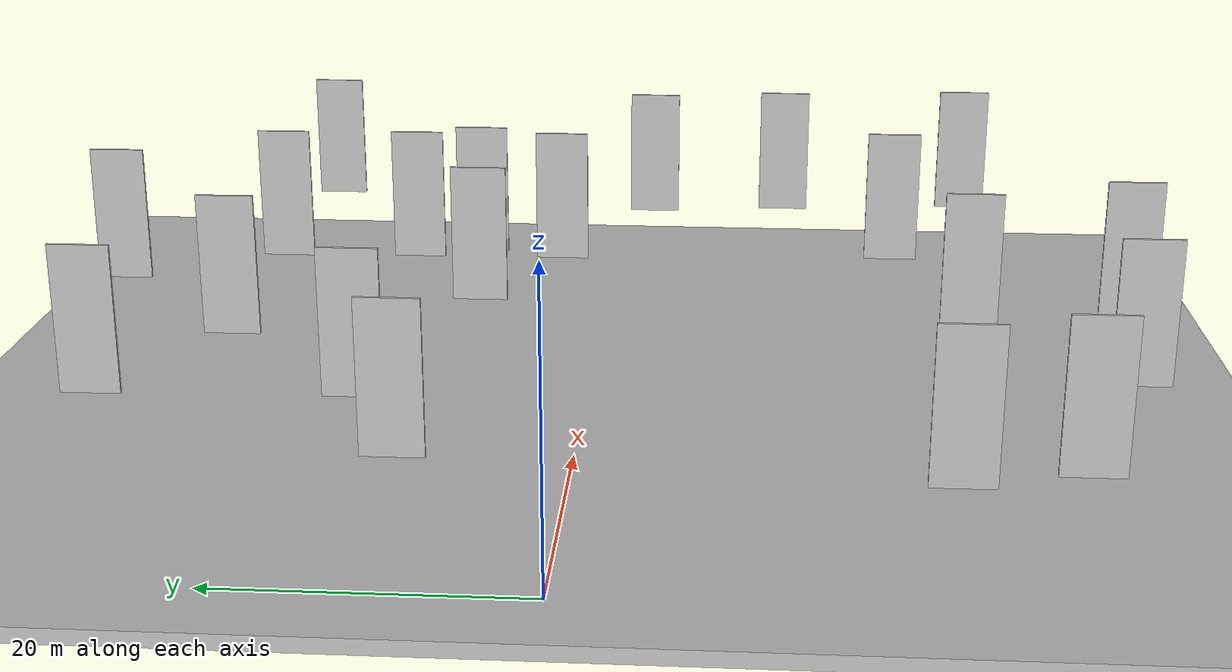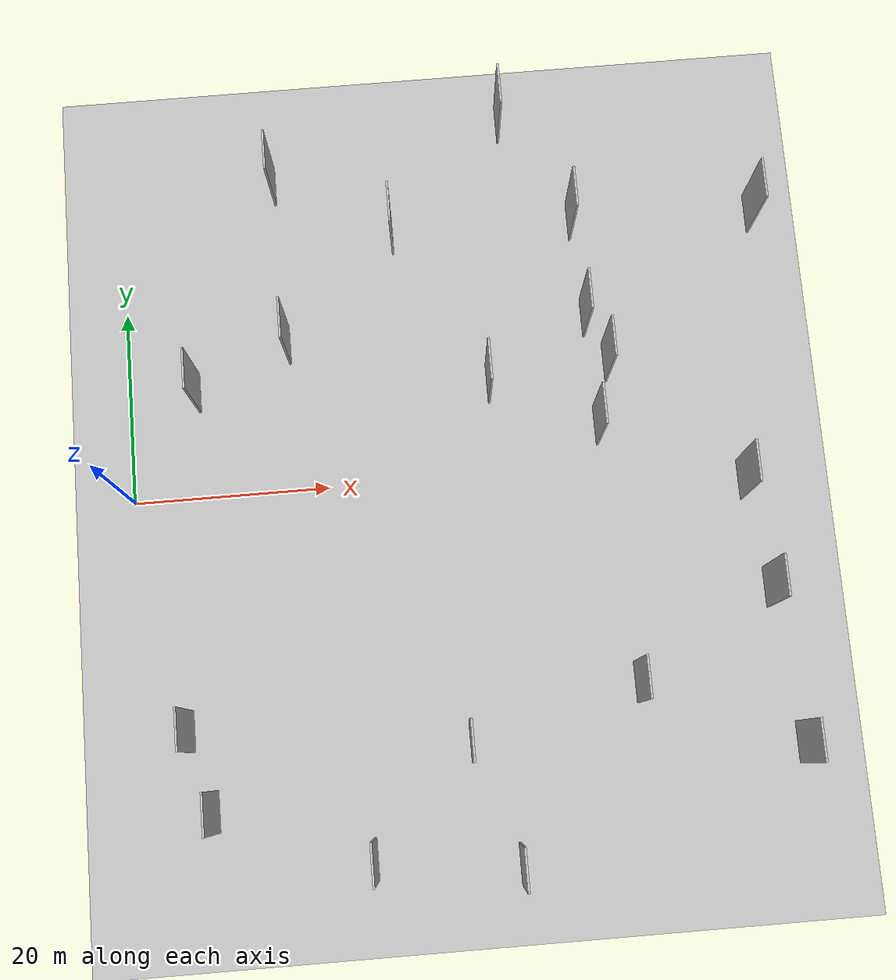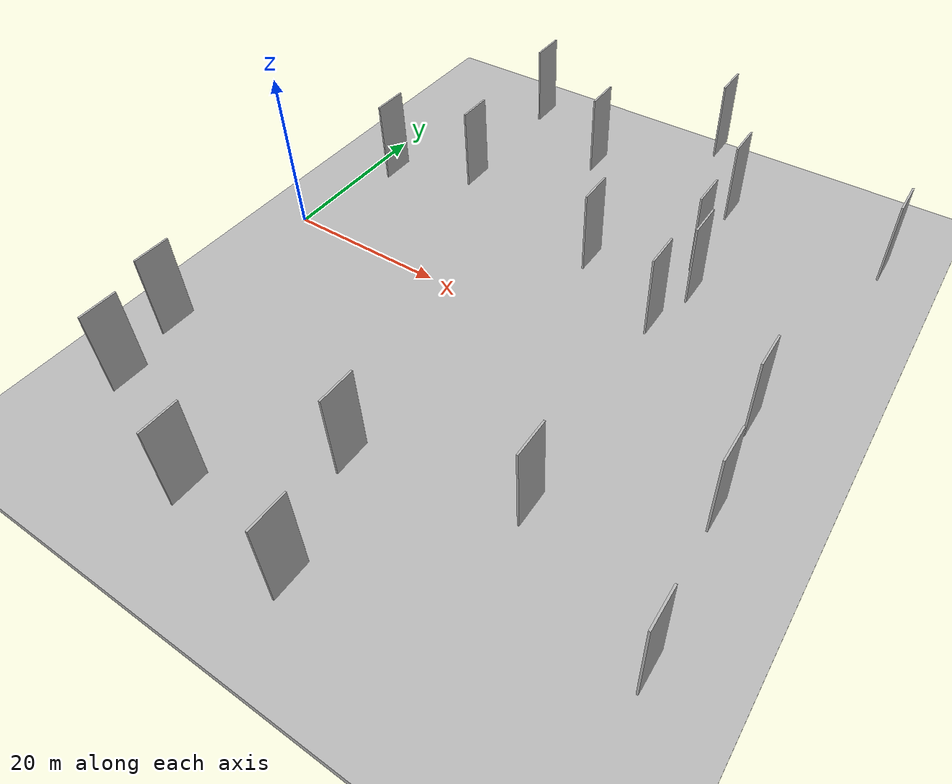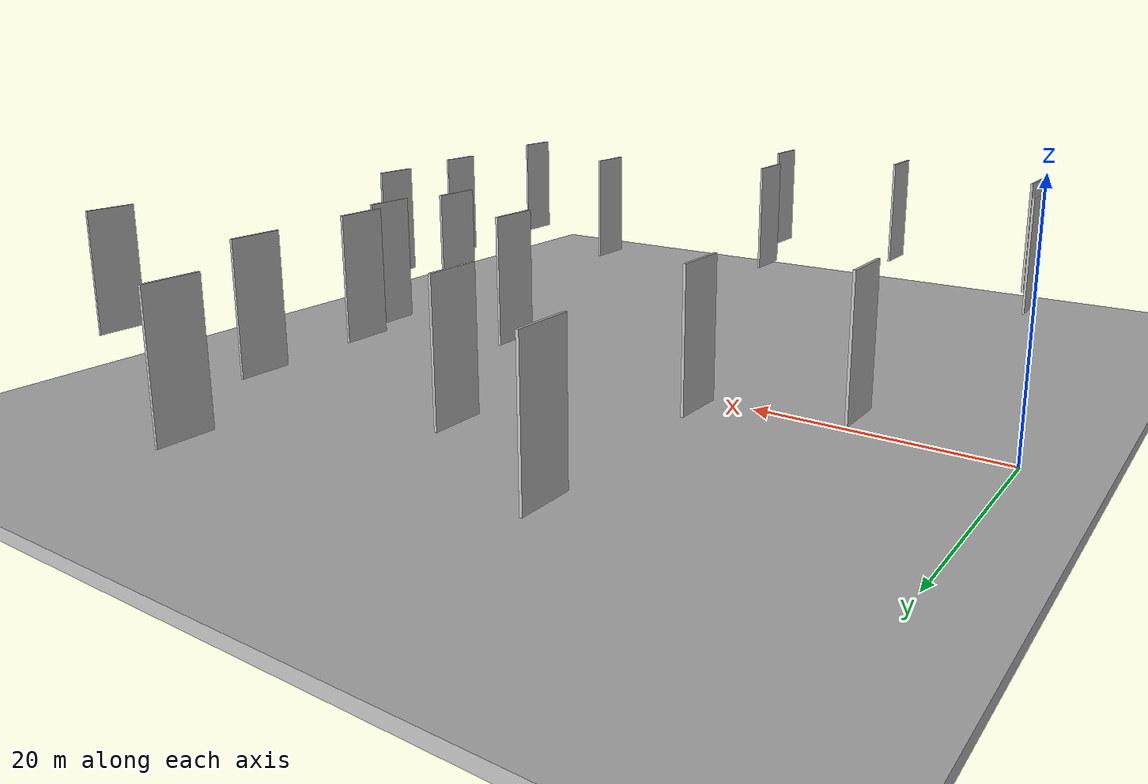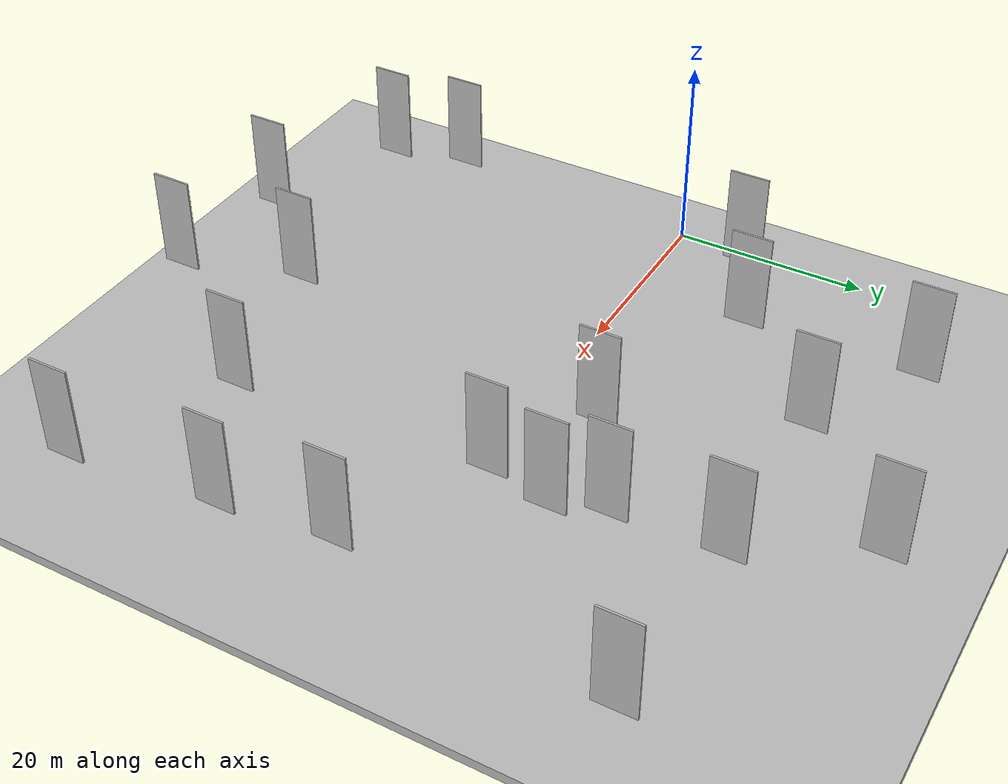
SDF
<?xml version="1.0" encoding="utf-8"?>

<sdf version="1.6">

   <world name="default">

      <gui fullscreen="0">

         <camera name="user_camera">

            <pose>-15 0 4.57585 0 0 0</pose>

            <view_controller>orbit</view_controller>

         </camera>

      </gui>

      <scene>

         <sky>

           <clouds>

             <speed>12</speed>

           </clouds>

         </sky>

         <ambient>0.4 0.4 0.4 1</ambient>

         <background>0.7 0.7 0.7 1</background>

         <shadows>1</shadows>

      </scene>

      <gravity>0 0 -9.8066</gravity>

      <magnetic_field>6e-06 2.3e-05 -4.2e-05</magnetic_field>

      <physics default="0" name="default_physics" type="ode">

         <ode>

            <solver>

               <type>quick</type>

               <iters>10</iters>

               <sor>1.0</sor>

               <use_dynamic_moi_rescaling>0</use_dynamic_moi_rescaling>

            </solver>

            <constraints>

               <cfm>0</cfm>

               <erp>0.2</erp>

               <contact_max_correcting_vel>100</contact_max_correcting_vel>

               <contact_surface_layer>0.001</contact_surface_layer>

            </constraints>

         </ode>

         <max_step_size>0.004</max_step_size>

         <real_time_factor>1</real_time_factor>

         <real_time_update_rate>250</real_time_update_rate>

      </physics>

      <light name="sun" type="directional">

         <cast_shadows>1</cast_shadows>

         <pose>0 0 10 0 0 0</pose>

         <diffuse>0.8 0.8 0.8 1</diffuse>

         <specular>0.2 0.2 0.2 1</specular>

         <attenuation>

            <range>1000</range>

            <constant>0.9</constant>

            <linear>0.01</linear>

            <quadratic>0.001</quadratic>

         </attenuation>

         <direction>-0.5 0.1 -0.9</direction>

      </light>

      <include>

         <name>ground_plane_1</name>

         <uri>model://HANNAS_ground_plane</uri>

         <pose>0 0 0  0 0 0</pose>

      </include>

      <include>

         <name>ground_plane_2</name>

         <uri>model://HANNAS_ground_plane</uri>

         <pose>100 0 0  0 0 0</pose>

      </include>

      <model name="HANNAS_wall_1">

         <static>1</static>

         <pose frame="">40.0768 35.9494 5.0 0.000000 0.000000 1.570796</pose>

         <link name="link">

            <pose frame="">0 0 5.00 0 0 0</pose>

            <collision name="collision">

               <geometry>

                  <box>

                     <size>4.00 0.2 10.00</size>

                  </box>

               </geometry>

               <max_contacts>10</max_contacts>

               <surface>

                  <contact>

                     <ode/>

                  </contact>

                  <bounce/>

                  <friction>

                     <torsional>

                        <ode/>

                     </torsional>

                     <ode/>

                  </friction>

               </surface>

            </collision>

            <visual name="visual">

               <cast_shadows>0</cast_shadows>

               <geometry>

                  <box>

                     <size>4.00 0.2 10.00</size>

                  </box>

               </geometry>

               <material>

                  <script>

                     <uri>model://HANNAS_wall/materials/scripts</uri>

                     <uri>model://HANNAS_wall/materials/textures</uri>

                     <name>vrc/HANNAS_wall</name>

                  </script>

               </material>

            </visual>

            <self_collide>0</self_collide>

            <enable_wind>0</enable_wind>

            <kinematic>0</kinematic>

         </link>

      </model>

      <model name="HANNAS_wall_2">

         <static>1</static>

         <pose frame="">48.5085 -22.4260 5.0 0.000000 0.000000 1.570796</pose>

         <link name="link">

            <pose frame="">0 0 5.00 0 0 0</pose>

            <collision name="collision">

               <geometry>

                  <box>

                     <size>4.00 0.2 10.00</size>

                  </box>

               </geometry>

               <max_contacts>10</max_contacts>

               <surface>

                  <contact>

                     <ode/>

                  </contact>

                  <bounce/>

                  <friction>

                     <torsional>

                        <ode/>

                     </torsional>

                     <ode/>

                  </friction>

               </surface>

            </collision>

            <visual name="visual">

               <cast_shadows>0</cast_shadows>

               <geometry>

                  <box>

                     <size>4.00 0.2 10.00</size>

                  </box>

               </geometry>

               <material>

                  <script>

                     <uri>model://HANNAS_wall/materials/scripts</uri>

                     <uri>model://HANNAS_wall/materials/textures</uri>

                     <name>vrc/HANNAS_wall</name>

                  </script>

               </material>

            </visual>

            <self_collide>0</self_collide>

            <enable_wind>0</enable_wind>

            <kinematic>0</kinematic>

         </link>

      </model>

      <model name="HANNAS_wall_3">

         <static>1</static>

         <pose frame="">46.8957 14.4274 5.0 0.000000 0.000000 1.570796</pose>

         <link name="link">

            <pose frame="">0 0 5.00 0 0 0</pose>

            <collision name="collision">

               <geometry>

                  <box>

                     <size>4.00 0.2 10.00</size>

                  </box>

               </geometry>

               <max_contacts>10</max_contacts>

               <surface>

                  <contact>

                     <ode/>

                  </contact>

                  <bounce/>

                  <friction>

                     <torsional>

                        <ode/>

                     </torsional>

                     <ode/>

                  </friction>

               </surface>

            </collision>

            <visual name="visual">

               <cast_shadows>0</cast_shadows>

               <geometry>

                  <box>

                     <size>4.00 0.2 10.00</size>

                  </box>

               </geometry>

               <material>

                  <script>

                     <uri>model://HANNAS_wall/materials/scripts</uri>

                     <uri>model://HANNAS_wall/materials/textures</uri>

                     <name>vrc/HANNAS_wall</name>

                  </script>

               </material>

            </visual>

            <self_collide>0</self_collide>

            <enable_wind>0</enable_wind>

            <kinematic>0</kinematic>

         </link>

      </model>

      <model name="HANNAS_wall_4">

         <static>1</static>

         <pose frame="">7.6327 -31.3090 5.0 0.000000 0.000000 1.570796</pose>

         <link name="link">

            <pose frame="">0 0 5.00 0 0 0</pose>

            <collision name="collision">

               <geometry>

                  <box>

                     <size>4.00 0.2 10.00</size>

                  </box>

               </geometry>

               <max_contacts>10</max_contacts>

               <surface>

                  <contact>

                     <ode/>

                  </contact>

                  <bounce/>

                  <friction>

                     <torsional>

                        <ode/>

                     </torsional>

                     <ode/>

                  </friction>

               </surface>

            </collision>

            <visual name="visual">

               <cast_shadows>0</cast_shadows>

               <geometry>

                  <box>

                     <size>4.00 0.2 10.00</size>

                  </box>

               </geometry>

               <material>

                  <script>

                     <uri>model://HANNAS_wall/materials/scripts</uri>

                     <uri>model://HANNAS_wall/materials/textures</uri>

                     <name>vrc/HANNAS_wall</name>

                  </script>

               </material>

            </visual>

            <self_collide>0</self_collide>

            <enable_wind>0</enable_wind>

            <kinematic>0</kinematic>

         </link>

      </model>

      <model name="HANNAS_wall_5">

         <static>1</static>

         <pose frame="">36.7635 8.3329 5.0 0.000000 0.000000 1.570796</pose>

         <link name="link">

            <pose frame="">0 0 5.00 0 0 0</pose>

            <collision name="collision">

               <geometry>

                  <box>

                     <size>4.00 0.2 10.00</size>

                  </box>

               </geometry>

               <max_contacts>10</max_contacts>

               <surface>

                  <contact>

                     <ode/>

                  </contact>

                  <bounce/>

                  <friction>

                     <torsional>

                        <ode/>

                     </torsional>

                     <ode/>

                  </friction>

               </surface>

            </collision>

            <visual name="visual">

               <cast_shadows>0</cast_shadows>

               <geometry>

                  <box>

                     <size>4.00 0.2 10.00</size>

                  </box>

               </geometry>

               <material>

                  <script>

                     <uri>model://HANNAS_wall/materials/scripts</uri>

                     <uri>model://HANNAS_wall/materials/textures</uri>

                     <name>vrc/HANNAS_wall</name>

                  </script>

               </material>

            </visual>

            <self_collide>0</self_collide>

            <enable_wind>0</enable_wind>

            <kinematic>0</kinematic>

         </link>

      </model>

      <model name="HANNAS_wall_6">

         <static>1</static>

         <pose frame="">7.8619 9.7866 5.0 0.000000 0.000000 1.570796</pose>

         <link name="link">

            <pose frame="">0 0 5.00 0 0 0</pose>

            <collision name="collision">

               <geometry>

                  <box>

                     <size>4.00 0.2 10.00</size>

                  </box>

               </geometry>

               <max_contacts>10</max_contacts>

               <surface>

                  <contact>

                     <ode/>

                  </contact>

                  <bounce/>

                  <friction>

                     <torsional>

                        <ode/>

                     </torsional>

                     <ode/>

                  </friction>

               </surface>

            </collision>

            <visual name="visual">

               <cast_shadows>0</cast_shadows>

               <geometry>

                  <box>

                     <size>4.00 0.2 10.00</size>

                  </box>

               </geometry>

               <material>

                  <script>

                     <uri>model://HANNAS_wall/materials/scripts</uri>

                     <uri>model://HANNAS_wall/materials/textures</uri>

                     <name>vrc/HANNAS_wall</name>

                  </script>

               </material>

            </visual>

            <self_collide>0</self_collide>

            <enable_wind>0</enable_wind>

            <kinematic>0</kinematic>

         </link>

      </model>

      <model name="HANNAS_wall_7">

         <static>1</static>

         <pose frame="">22.3459 -36.8904 5.0 0.000000 0.000000 1.570796</pose>

         <link name="link">

            <pose frame="">0 0 5.00 0 0 0</pose>

            <collision name="collision">

               <geometry>

                  <box>

                     <size>4.00 0.2 10.00</size>

                  </box>

               </geometry>

               <max_contacts>10</max_contacts>

               <surface>

                  <contact>

                     <ode/>

                  </contact>

                  <bounce/>

                  <friction>

                     <torsional>

                        <ode/>

                     </torsional>

                     <ode/>

                  </friction>

               </surface>

            </collision>

            <visual name="visual">

               <cast_shadows>0</cast_shadows>

               <geometry>

                  <box>

                     <size>4.00 0.2 10.00</size>

                  </box>

               </geometry>

               <material>

                  <script>

                     <uri>model://HANNAS_wall/materials/scripts</uri>

                     <uri>model://HANNAS_wall/materials/textures</uri>

                     <name>vrc/HANNAS_wall</name>

                  </script>

               </material>

            </visual>

            <self_collide>0</self_collide>

            <enable_wind>0</enable_wind>

            <kinematic>0</kinematic>

         </link>

      </model>

      <model name="HANNAS_wall_8">

         <static>1</static>

         <pose frame="">32.1319 -26.7567 5.0 0.000000 0.000000 1.570796</pose>

         <link name="link">

            <pose frame="">0 0 5.00 0 0 0</pose>

            <collision name="collision">

               <geometry>

                  <box>

                     <size>4.00 0.2 10.00</size>

                  </box>

               </geometry>

               <max_contacts>10</max_contacts>

               <surface>

                  <contact>

                     <ode/>

                  </contact>

                  <bounce/>

                  <friction>

                     <torsional>

                        <ode/>

                     </torsional>

                     <ode/>

                  </friction>

               </surface>

            </collision>

            <visual name="visual">

               <cast_shadows>0</cast_shadows>

               <geometry>

                  <box>

                     <size>4.00 0.2 10.00</size>

                  </box>

               </geometry>

               <material>

                  <script>

                     <uri>model://HANNAS_wall/materials/scripts</uri>

                     <uri>model://HANNAS_wall/materials/textures</uri>

                     <name>vrc/HANNAS_wall</name>

                  </script>

               </material>

            </visual>

            <self_collide>0</self_collide>

            <enable_wind>0</enable_wind>

            <kinematic>0</kinematic>

         </link>

      </model>

      <model name="HANNAS_wall_9">

         <static>1</static>

         <pose frame="">17.1582 13.9943 5.0 0.000000 0.000000 1.570796</pose>

         <link name="link">

            <pose frame="">0 0 5.00 0 0 0</pose>

            <collision name="collision">

               <geometry>

                  <box>

                     <size>4.00 0.2 10.00</size>

                  </box>

               </geometry>

               <max_contacts>10</max_contacts>

               <surface>

                  <contact>

                     <ode/>

                  </contact>

                  <bounce/>

                  <friction>

                     <torsional>

                        <ode/>

                     </torsional>

                     <ode/>

                  </friction>

               </surface>

            </collision>

            <visual name="visual">

               <cast_shadows>0</cast_shadows>

               <geometry>

                  <box>

                     <size>4.00 0.2 10.00</size>

                  </box>

               </geometry>

               <material>

                  <script>

                     <uri>model://HANNAS_wall/materials/scripts</uri>

                     <uri>model://HANNAS_wall/materials/textures</uri>

                     <name>vrc/HANNAS_wall</name>

                  </script>

               </material>

            </visual>

            <self_collide>0</self_collide>

            <enable_wind>0</enable_wind>

            <kinematic>0</kinematic>

         </link>

      </model>

      <model name="HANNAS_wall_10">

         <static>1</static>

         <pose frame="">47.1271 3.1942 5.0 0.000000 0.000000 1.570796</pose>

         <link name="link">

            <pose frame="">0 0 5.00 0 0 0</pose>

            <collision name="collision">

               <geometry>

                  <box>

                     <size>4.00 0.2 10.00</size>

                  </box>

               </geometry>

               <max_contacts>10</max_contacts>

               <surface>

                  <contact>

                     <ode/>

                  </contact>

                  <bounce/>

                  <friction>

                     <torsional>

                        <ode/>

                     </torsional>

                     <ode/>

                  </friction>

               </surface>

            </collision>

            <visual name="visual">

               <cast_shadows>0</cast_shadows>

               <geometry>

                  <box>

                     <size>4.00 0.2 10.00</size>

                  </box>

               </geometry>

               <material>

                  <script>

                     <uri>model://HANNAS_wall/materials/scripts</uri>

                     <uri>model://HANNAS_wall/materials/textures</uri>

                     <name>vrc/HANNAS_wall</name>

                  </script>

               </material>

            </visual>

            <self_collide>0</self_collide>

            <enable_wind>0</enable_wind>

            <kinematic>0</kinematic>

         </link>

      </model>

      <model name="HANNAS_wall_11">

         <static>1</static>

         <pose frame="">35.9084 -38.4256 5.0 0.000000 0.000000 1.570796</pose>

         <link name="link">

            <pose frame="">0 0 5.00 0 0 0</pose>

            <collision name="collision">

               <geometry>

                  <box>

                     <size>4.00 0.2 10.00</size>

                  </box>

               </geometry>

               <max_contacts>10</max_contacts>

               <surface>

                  <contact>

                     <ode/>

                  </contact>

                  <bounce/>

                  <friction>

                     <torsional>

                        <ode/>

                     </torsional>

                     <ode/>

                  </friction>

               </surface>

            </collision>

            <visual name="visual">

               <cast_shadows>0</cast_shadows>

               <geometry>

                  <box>

                     <size>4.00 0.2 10.00</size>

                  </box>

               </geometry>

               <material>

                  <script>

                     <uri>model://HANNAS_wall/materials/scripts</uri>

                     <uri>model://HANNAS_wall/materials/textures</uri>

                     <name>vrc/HANNAS_wall</name>

                  </script>

               </material>

            </visual>

            <self_collide>0</self_collide>

            <enable_wind>0</enable_wind>

            <kinematic>0</kinematic>

         </link>

      </model>

      <model name="HANNAS_wall_12">

         <static>1</static>

         <pose frame="">62.0846 -14.2858 5.0 0.000000 0.000000 1.570796</pose>

         <link name="link">

            <pose frame="">0 0 5.00 0 0 0</pose>

            <collision name="collision">

               <geometry>

                  <box>

                     <size>4.00 0.2 10.00</size>

                  </box>

               </geometry>

               <max_contacts>10</max_contacts>

               <surface>

                  <contact>

                     <ode/>

                  </contact>

                  <bounce/>

                  <friction>

                     <torsional>

                        <ode/>

                     </torsional>

                     <ode/>

                  </friction>

               </surface>

            </collision>

            <visual name="visual">

               <cast_shadows>0</cast_shadows>

               <geometry>

                  <box>

                     <size>4.00 0.2 10.00</size>

                  </box>

               </geometry>

               <material>

                  <script>

                     <uri>model://HANNAS_wall/materials/scripts</uri>

                     <uri>model://HANNAS_wall/materials/textures</uri>

                     <name>vrc/HANNAS_wall</name>

                  </script>

               </material>

            </visual>

            <self_collide>0</self_collide>

            <enable_wind>0</enable_wind>

            <kinematic>0</kinematic>

         </link>

      </model>

      <model name="HANNAS_wall_13">

         <static>1</static>

         <pose frame="">46.4742 24.7945 5.0 0.000000 0.000000 1.570796</pose>

         <link name="link">

            <pose frame="">0 0 5.00 0 0 0</pose>

            <collision name="collision">

               <geometry>

                  <box>

                     <size>4.00 0.2 10.00</size>

                  </box>

               </geometry>

               <max_contacts>10</max_contacts>

               <surface>

                  <contact>

                     <ode/>

                  </contact>

                  <bounce/>

                  <friction>

                     <torsional>

                        <ode/>

                     </torsional>

                     <ode/>

                  </friction>

               </surface>

            </collision>

            <visual name="visual">

               <cast_shadows>0</cast_shadows>

               <geometry>

                  <box>

                     <size>4.00 0.2 10.00</size>

                  </box>

               </geometry>

               <material>

                  <script>

                     <uri>model://HANNAS_wall/materials/scripts</uri>

                     <uri>model://HANNAS_wall/materials/textures</uri>

                     <name>vrc/HANNAS_wall</name>

                  </script>

               </material>

            </visual>

            <self_collide>0</self_collide>

            <enable_wind>0</enable_wind>

            <kinematic>0</kinematic>

         </link>

      </model>

      <model name="HANNAS_wall_14">

         <static>1</static>

         <pose frame="">64.7400 24.1375 5.0 0.000000 0.000000 1.570796</pose>

         <link name="link">

            <pose frame="">0 0 5.00 0 0 0</pose>

            <collision name="collision">

               <geometry>

                  <box>

                     <size>4.00 0.2 10.00</size>

                  </box>

               </geometry>

               <max_contacts>10</max_contacts>

               <surface>

                  <contact>

                     <ode/>

                  </contact>

                  <bounce/>

                  <friction>

                     <torsional>

                        <ode/>

                     </torsional>

                     <ode/>

                  </friction>

               </surface>

            </collision>

            <visual name="visual">

               <cast_shadows>0</cast_shadows>

               <geometry>

                  <box>

                     <size>4.00 0.2 10.00</size>

                  </box>

               </geometry>

               <material>

                  <script>

                     <uri>model://HANNAS_wall/materials/scripts</uri>

                     <uri>model://HANNAS_wall/materials/textures</uri>

                     <name>vrc/HANNAS_wall</name>

                  </script>

               </material>

            </visual>

            <self_collide>0</self_collide>

            <enable_wind>0</enable_wind>

            <kinematic>0</kinematic>

         </link>

      </model>

      <model name="HANNAS_wall_15">

         <static>1</static>

         <pose frame="">28.3373 24.7083 5.0 0.000000 0.000000 1.570796</pose>

         <link name="link">

            <pose frame="">0 0 5.00 0 0 0</pose>

            <collision name="collision">

               <geometry>

                  <box>

                     <size>4.00 0.2 10.00</size>

                  </box>

               </geometry>

               <max_contacts>10</max_contacts>

               <surface>

                  <contact>

                     <ode/>

                  </contact>

                  <bounce/>

                  <friction>

                     <torsional>

                        <ode/>

                     </torsional>

                     <ode/>

                  </friction>

               </surface>

            </collision>

            <visual name="visual">

               <cast_shadows>0</cast_shadows>

               <geometry>

                  <box>

                     <size>4.00 0.2 10.00</size>

                  </box>

               </geometry>

               <material>

                  <script>

                     <uri>model://HANNAS_wall/materials/scripts</uri>

                     <uri>model://HANNAS_wall/materials/textures</uri>

                     <name>vrc/HANNAS_wall</name>

                  </script>

               </material>

            </visual>

            <self_collide>0</self_collide>

            <enable_wind>0</enable_wind>

            <kinematic>0</kinematic>

         </link>

      </model>

      <model name="HANNAS_wall_16">

         <static>1</static>

         <pose frame="">5.6250 -23.6150 5.0 0.000000 0.000000 1.570796</pose>

         <link name="link">

            <pose frame="">0 0 5.00 0 0 0</pose>

            <collision name="collision">

               <geometry>

                  <box>

                     <size>4.00 0.2 10.00</size>

                  </box>

               </geometry>

               <max_contacts>10</max_contacts>

               <surface>

                  <contact>

                     <ode/>

                  </contact>

                  <bounce/>

                  <friction>

                     <torsional>

                        <ode/>

                     </torsional>

                     <ode/>

                  </friction>

               </surface>

            </collision>

            <visual name="visual">

               <cast_shadows>0</cast_shadows>

               <geometry>

                  <box>

                     <size>4.00 0.2 10.00</size>

                  </box>

               </geometry>

               <material>

                  <script>

                     <uri>model://HANNAS_wall/materials/scripts</uri>

                     <uri>model://HANNAS_wall/materials/textures</uri>

                     <name>vrc/HANNAS_wall</name>

                  </script>

               </material>

            </visual>

            <self_collide>0</self_collide>

            <enable_wind>0</enable_wind>

            <kinematic>0</kinematic>

         </link>

      </model>

      <model name="HANNAS_wall_17">

         <static>1</static>

         <pose frame="">48.6551 9.6393 5.0 0.000000 0.000000 1.570796</pose>

         <link name="link">

            <pose frame="">0 0 5.00 0 0 0</pose>

            <collision name="collision">

               <geometry>

                  <box>

                     <size>4.00 0.2 10.00</size>

                  </box>

               </geometry>

               <max_contacts>10</max_contacts>

               <surface>

                  <contact>

                     <ode/>

                  </contact>

                  <bounce/>

                  <friction>

                     <torsional>

                        <ode/>

                     </torsional>

                     <ode/>

                  </friction>

               </surface>

            </collision>

            <visual name="visual">

               <cast_shadows>0</cast_shadows>

               <geometry>

                  <box>

                     <size>4.00 0.2 10.00</size>

                  </box>

               </geometry>

               <material>

                  <script>

                     <uri>model://HANNAS_wall/materials/scripts</uri>

                     <uri>model://HANNAS_wall/materials/textures</uri>

                     <name>vrc/HANNAS_wall</name>

                  </script>

               </material>

            </visual>

            <self_collide>0</self_collide>

            <enable_wind>0</enable_wind>

            <kinematic>0</kinematic>

         </link>

      </model>

      <model name="HANNAS_wall_18">

         <static>1</static>

         <pose frame="">60.7862 -3.4447 5.0 0.000000 0.000000 1.570796</pose>

         <link name="link">

            <pose frame="">0 0 5.00 0 0 0</pose>

            <collision name="collision">

               <geometry>

                  <box>

                     <size>4.00 0.2 10.00</size>

                  </box>

               </geometry>

               <max_contacts>10</max_contacts>

               <surface>

                  <contact>

                     <ode/>

                  </contact>

                  <bounce/>

                  <friction>

                     <torsional>

                        <ode/>

                     </torsional>

                     <ode/>

                  </friction>

               </surface>

            </collision>

            <visual name="visual">

               <cast_shadows>0</cast_shadows>

               <geometry>

                  <box>

                     <size>4.00 0.2 10.00</size>

                  </box>

               </geometry>

               <material>

                  <script>

                     <uri>model://HANNAS_wall/materials/scripts</uri>

                     <uri>model://HANNAS_wall/materials/textures</uri>

                     <name>vrc/HANNAS_wall</name>

                  </script>

               </material>

            </visual>

            <self_collide>0</self_collide>

            <enable_wind>0</enable_wind>

            <kinematic>0</kinematic>

         </link>

      </model>

      <model name="HANNAS_wall_19">

         <static>1</static>

         <pose frame="">63.4442 -29.3271 5.0 0.000000 0.000000 1.570796</pose>

         <link name="link">

            <pose frame="">0 0 5.00 0 0 0</pose>

            <collision name="collision">

               <geometry>

                  <box>

                     <size>4.00 0.2 10.00</size>

                  </box>

               </geometry>

               <max_contacts>10</max_contacts>

               <surface>

                  <contact>

                     <ode/>

                  </contact>

                  <bounce/>

                  <friction>

                     <torsional>

                        <ode/>

                     </torsional>

                     <ode/>

                  </friction>

               </surface>

            </collision>

            <visual name="visual">

               <cast_shadows>0</cast_shadows>

               <geometry>

                  <box>

                     <size>4.00 0.2 10.00</size>

                  </box>

               </geometry>

               <material>

                  <script>

                     <uri>model://HANNAS_wall/materials/scripts</uri>

                     <uri>model://HANNAS_wall/materials/textures</uri>

                     <name>vrc/HANNAS_wall</name>

                  </script>

               </material>

            </visual>

            <self_collide>0</self_collide>

            <enable_wind>0</enable_wind>

            <kinematic>0</kinematic>

         </link>

      </model>

      <model name="HANNAS_wall_20">

         <static>1</static>

         <pose frame="">16.6896 30.9979 5.0 0.000000 0.000000 1.570796</pose>

         <link name="link">

            <pose frame="">0 0 5.00 0 0 0</pose>

            <collision name="collision">

               <geometry>

                  <box>

                     <size>4.00 0.2 10.00</size>

                  </box>

               </geometry>

               <max_contacts>10</max_contacts>

               <surface>

                  <contact>

                     <ode/>

                  </contact>

                  <bounce/>

                  <friction>

                     <torsional>

                        <ode/>

                     </torsional>

                     <ode/>

                  </friction>

               </surface>

            </collision>

            <visual name="visual">

               <cast_shadows>0</cast_shadows>

               <geometry>

                  <box>

                     <size>4.00 0.2 10.00</size>

                  </box>

               </geometry>

               <material>

                  <script>

                     <uri>model://HANNAS_wall/materials/scripts</uri>

                     <uri>model://HANNAS_wall/materials/textures</uri>

                     <name>vrc/HANNAS_wall</name>

                  </script>

               </material>

            </visual>

            <self_collide>0</self_collide>

            <enable_wind>0</enable_wind>

            <kinematic>0</kinematic>

         </link>

      </model>

   </world>

</sdf>

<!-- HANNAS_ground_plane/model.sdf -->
<sdf version="1.4">
<model name="HANNAS_ground_plane">
  <static>true</static>
    <link name="link">
      <collision name="collision">
        <geometry>
          <plane>
            <normal>0 0 1</normal>
            <size>1000 1000</size>
          </plane>
        </geometry>
        <surface>
          <friction>
            <ode>
              <mu>100</mu>
              <mu2>50</mu2>
            </ode>
          </friction>
        </surface>
      </collision>
      <visual name="visual">
        <cast_shadows>false</cast_shadows>
        <geometry>
          <plane>
            <normal>0 0 1</normal>
            <size>1000 1000</size>
          </plane>
        </geometry>
        <material>
          <script>
            <uri>model://HANNAS_ground_plane/materials/scripts/HANNAS_ground_plane.material</uri>
	    <uri>model://HANNAS_ground_plane/materials/textures</uri>
            <name>HANNASGroundPlane/Image</name>
          </script>
        </material>
      </visual>
    </link>
  </model>
</sdf>
